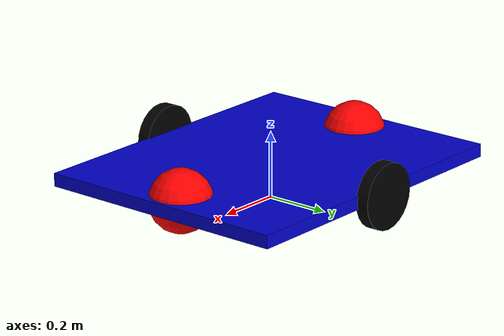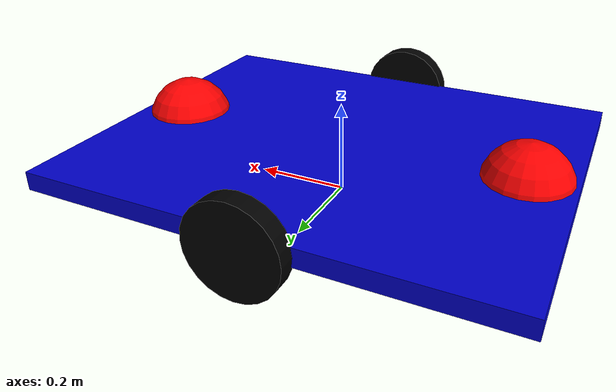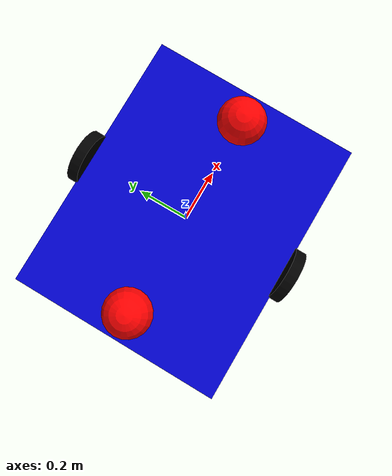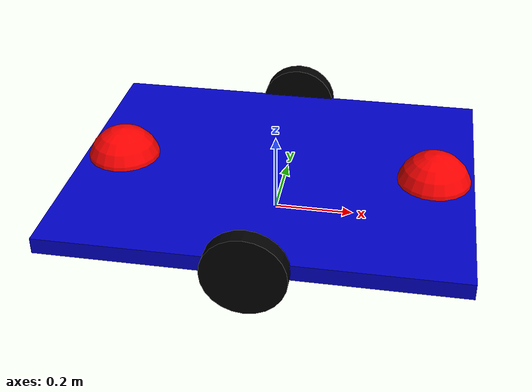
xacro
<?xml version="1.0"?>
<robot xmlns:xacro="http://www.ros.org/wiki/xacro">

    <xacro:property name="chassis_length" value="1.0"/>
    <xacro:property name="chassis_width"  value="0.8"/>
    <xacro:property name="chassis_height" value="0.04"/>
    <xacro:property name="chassis_mass"   value="4.0"/>

    <xacro:property name="wheel_radius"   value="0.10"/>
    <xacro:property name="wheel_length"   value="0.04"/>
    <xacro:property name="wheel_mass"     value="0.5"/>
    <xacro:property name="wheel_offset_y" value="0.415"/>

    <xacro:property name="castor_radius"  value="0.095"/>
    <xacro:property name="castor_mass"    value="0.2"/>

    <material name="blue"> <color rgba="0 0 0.8 1"/> </material>
    <material name="black"> <color rgba="0 0 0 1"/> </material>
    <material name="red"> <color rgba="1 0 0 1"/> </material>

    <link name="base_link"></link>

    <joint name="chassis_joint" type="fixed">
            <parent link="base_link"/>
            <child link="chassis_link"/>
            <origin xyz="0 0 ${wheel_radius}"/>
    </joint>

    <link name="chassis_link">
        <visual>
            <geometry> <box size="${chassis_length} ${chassis_width} ${chassis_height}"/> </geometry>
            <material name="blue"/>
        </visual>
        <collision>
            <geometry> <box size="${chassis_length} ${chassis_width} ${chassis_height}"/> </geometry>
        </collision>
        <inertial>
            <origin xyz="0 0 0" rpy="0 0 0"/>
            <mass value="${chassis_mass}"/>
            <inertia ixx="0.21386" ixy="0.0" ixz="0.0" iyy="0.33386" iyz="0.0" izz="0.54666"/>
        </inertial>
    </link>

    <gazebo reference="chassis_link">
        <material>Gazebo/Blue</material>
    </gazebo>

    <link name="wheel_left_link">
        <visual>
            <geometry> <cylinder length="${wheel_length}" radius="${wheel_radius}"/> </geometry>
            <material name="black"/>
        </visual>
        <collision>
            <geometry> <cylinder length="${wheel_length}" radius="${wheel_radius}"/> </geometry>
        </collision>
        <inertial>
            <origin xyz="0 0 0" rpy="0 0 0"/>
            <mass value="${wheel_mass}"/>
            <inertia ixx="0.00131" ixy="0.0" ixz="0.0" iyy="0.00131" iyz="0.0" izz="0.0025"/>
        </inertial>
    </link>

    <joint name="wheel_left_joint" type="continuous">
        <parent link="chassis_link"/>
        <child link="wheel_left_link"/>
        <origin xyz="0 ${wheel_offset_y} 0" rpy="${pi/2} 0 0"/>
        <axis xyz="0 0 -1"/>
    </joint>

    <gazebo reference="wheel_left_link">
        <material>Gazebo/Black</material>
    </gazebo>

    <link name="wheel_right_link">
        <visual>
            <geometry> <cylinder length="${wheel_length}" radius="${wheel_radius}"/> </geometry>
            <material name="black"/>
        </visual>
        <collision>
            <geometry> <cylinder length="${wheel_length}" radius="${wheel_radius}"/> </geometry>
        </collision>
        <inertial>
            <origin xyz="0 0 0" rpy="0 0 0"/>
            <mass value="${wheel_mass}"/>
            <inertia ixx="0.00131" ixy="0.0" ixz="0.0" iyy="0.00131" iyz="0.0" izz="0.0025"/>
        </inertial>
    </link>

    <joint name="wheel_right_joint" type="continuous">
        <parent link="chassis_link"/>
        <child link="wheel_right_link"/>
        <origin xyz="0 -${wheel_offset_y} 0" rpy="${pi/2} 0 0"/>
        <axis xyz="0 0 -1"/>
    </joint>

    <gazebo reference="wheel_right_link">
        <material>Gazebo/Black</material>
    </gazebo>

    <link name="wheel_castor_front_link">
        <visual> <geometry> <sphere radius="${castor_radius}"/> </geometry> <material name="red"/> </visual>
        <collision> <geometry> <sphere radius="${castor_radius}"/> </geometry> </collision>
        <inertial> <mass value="${castor_mass}"/> <inertia ixx="0.0018" ixy="0.0" ixz="0.0" iyy="0.0018" iyz="0.0" izz="0.0018"/> </inertial>
    </link>

    <joint name="wheel_castor_front_joint" type="fixed">
        <parent link="chassis_link"/>
        <child link="wheel_castor_front_link"/>
        <origin xyz="0.40 0 0" rpy="0 0 0"/>
    </joint>

    <gazebo reference="wheel_castor_front_link"> <material>Gazebo/Red</material> </gazebo>

    <link name="wheel_castor_back_link">
        <visual> <geometry> <sphere radius="${castor_radius}"/> </geometry> <material name="red"/> </visual>
        <collision> <geometry> <sphere radius="${castor_radius}"/> </geometry> </collision>
        <inertial> <mass value="${castor_mass}"/> <inertia ixx="0.0018" ixy="0.0" ixz="0.0" iyy="0.0018" iyz="0.0" izz="0.0018"/> </inertial>
    </link>

    <joint name="wheel_castor_back_joint" type="fixed">
        <parent link="chassis_link"/>
        <child link="wheel_castor_back_link"/>
        <origin xyz="-0.40 0 0" rpy="0 0 0"/>
    </joint>

    <gazebo reference="wheel_castor_back_link"> <material>Gazebo/Red</material> </gazebo>

</robot>
